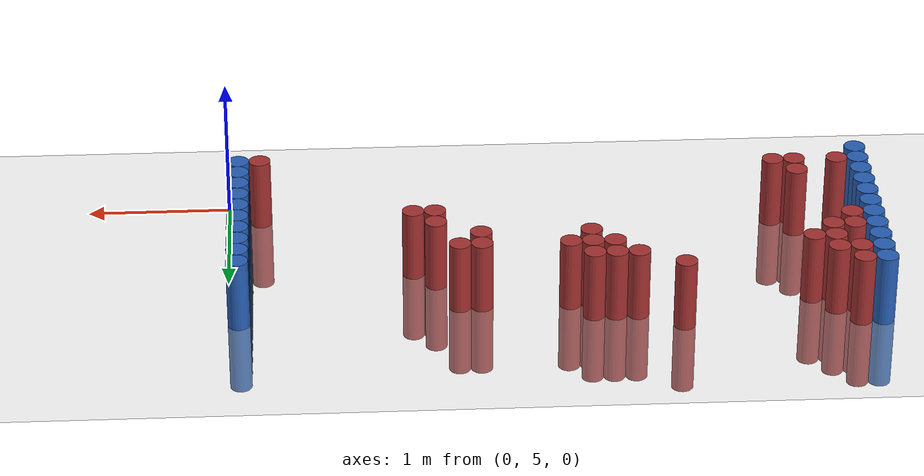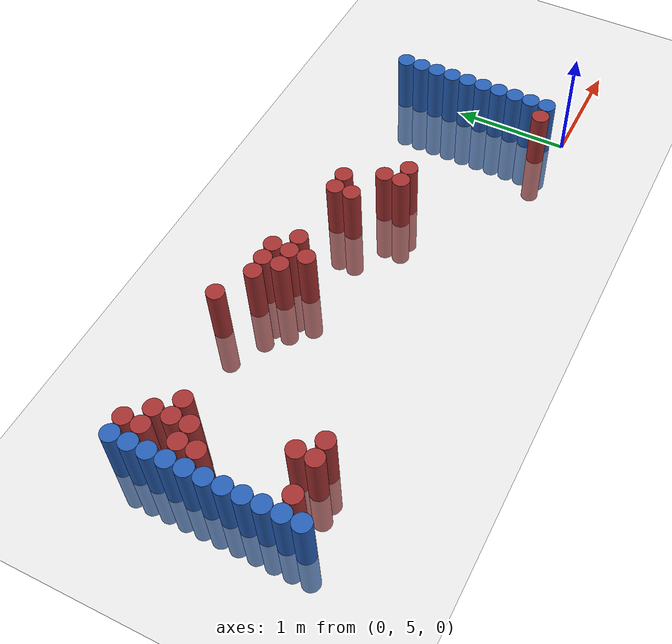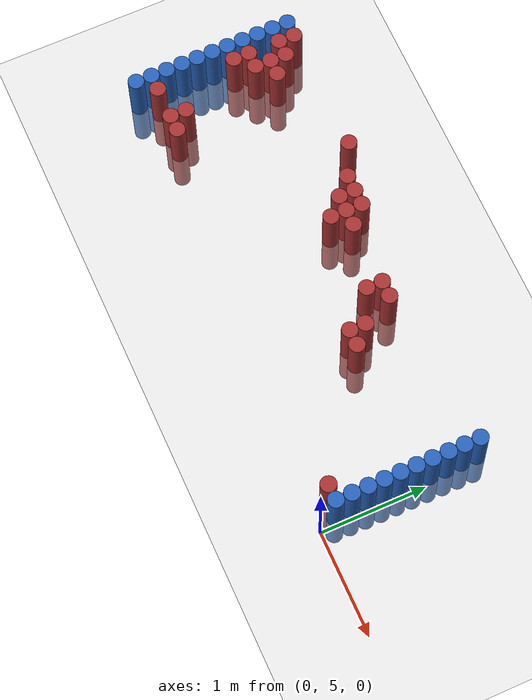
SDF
<sdf version="1.6">
 <world name="default">
  <model name="ground_plane">
   <static>1</static>
   <link name="link">
    <collision name="collision">
     <geometry><plane><normal>0 0 1</normal><size>100 100</size></plane></geometry>
     <surface><friction><ode><mu>100</mu><mu2>50</mu2></ode></friction></surface>
    </collision>
    <visual name="visual">
     <cast_shadows>0</cast_shadows>
     <geometry><plane><normal>0 0 1</normal><size>100 100</size></plane></geometry>
     <material>
      <script><uri>file://media/materials/scripts/gazebo.material</uri><name>Gazebo/Grey</name></script>
     </material>
    </visual>
   </link>
  </model>
  <model name="unit_cylinder_96">
   <static>1</static>
   <pose>-4.425000 5.175000 0.000000 0.000000 0.000000 0.000000</pose>
   <link name="link">
    <inertial>
     <mass>1</mass>
     <inertia><ixx>0.145833</ixx><ixy>0</ixy><ixz>0</ixz><iyy>0.145833</iyy><iyz>0</iyz><izz>0.125</izz></inertia>
    </inertial>
    <collision name="collision">
     <geometry><cylinder><radius>0.075000</radius><length>1</length></cylinder></geometry>
    </collision>
    <visual name="visual">
     <geometry><cylinder><radius>0.075000</radius><length>1</length></cylinder></geometry>
     <material>
      <ambient>0.152000 0.379000 0.720000 1</ambient>
      <diffuse>0.152000 0.379000 0.720000 1</diffuse>
     </material>
     <material>
      <script><name>Gazebo/Grey</name><uri>file://media/materials/scripts/gazebo.material</uri></script>
     </material>
    </visual>
   </link>
  </model>
  <model name="unit_cylinder_97">
   <static>1</static>
   <pose>-4.425000 5.325000 0.000000 0.000000 0.000000 0.000000</pose>
   <link name="link">
    <inertial>
     <mass>1</mass>
     <inertia><ixx>0.145833</ixx><ixy>0</ixy><ixz>0</ixz><iyy>0.145833</iyy><iyz>0</iyz><izz>0.125</izz></inertia>
    </inertial>
    <collision name="collision">
     <geometry><cylinder><radius>0.075000</radius><length>1</length></cylinder></geometry>
    </collision>
    <visual name="visual">
     <geometry><cylinder><radius>0.075000</radius><length>1</length></cylinder></geometry>
     <material>
      <ambient>0.152000 0.379000 0.720000 1</ambient>
      <diffuse>0.152000 0.379000 0.720000 1</diffuse>
     </material>
     <material>
      <script><name>Gazebo/Grey</name><uri>file://media/materials/scripts/gazebo.material</uri></script>
     </material>
    </visual>
   </link>
  </model>
  <model name="unit_cylinder_98">
   <static>1</static>
   <pose>-4.425000 5.475000 0.000000 0.000000 0.000000 0.000000</pose>
   <link name="link">
    <inertial>
     <mass>1</mass>
     <inertia><ixx>0.145833</ixx><ixy>0</ixy><ixz>0</ixz><iyy>0.145833</iyy><iyz>0</iyz><izz>0.125</izz></inertia>
    </inertial>
    <collision name="collision">
     <geometry><cylinder><radius>0.075000</radius><length>1</length></cylinder></geometry>
    </collision>
    <visual name="visual">
     <geometry><cylinder><radius>0.075000</radius><length>1</length></cylinder></geometry>
     <material>
      <ambient>0.152000 0.379000 0.720000 1</ambient>
      <diffuse>0.152000 0.379000 0.720000 1</diffuse>
     </material>
     <material>
      <script><name>Gazebo/Grey</name><uri>file://media/materials/scripts/gazebo.material</uri></script>
     </material>
    </visual>
   </link>
  </model>
  <model name="unit_cylinder_99">
   <static>1</static>
   <pose>-4.425000 5.625000 0.000000 0.000000 0.000000 0.000000</pose>
   <link name="link">
    <inertial>
     <mass>1</mass>
     <inertia><ixx>0.145833</ixx><ixy>0</ixy><ixz>0</ixz><iyy>0.145833</iyy><iyz>0</iyz><izz>0.125</izz></inertia>
    </inertial>
    <collision name="collision">
     <geometry><cylinder><radius>0.075000</radius><length>1</length></cylinder></geometry>
    </collision>
    <visual name="visual">
     <geometry><cylinder><radius>0.075000</radius><length>1</length></cylinder></geometry>
     <material>
      <ambient>0.152000 0.379000 0.720000 1</ambient>
      <diffuse>0.152000 0.379000 0.720000 1</diffuse>
     </material>
     <material>
      <script><name>Gazebo/Grey</name><uri>file://media/materials/scripts/gazebo.material</uri></script>
     </material>
    </visual>
   </link>
  </model>
  <model name="unit_cylinder_100">
   <static>1</static>
   <pose>-4.425000 5.775000 0.000000 0.000000 0.000000 0.000000</pose>
   <link name="link">
    <inertial>
     <mass>1</mass>
     <inertia><ixx>0.145833</ixx><ixy>0</ixy><ixz>0</ixz><iyy>0.145833</iyy><iyz>0</iyz><izz>0.125</izz></inertia>
    </inertial>
    <collision name="collision">
     <geometry><cylinder><radius>0.075000</radius><length>1</length></cylinder></geometry>
    </collision>
    <visual name="visual">
     <geometry><cylinder><radius>0.075000</radius><length>1</length></cylinder></geometry>
     <material>
      <ambient>0.152000 0.379000 0.720000 1</ambient>
      <diffuse>0.152000 0.379000 0.720000 1</diffuse>
     </material>
     <material>
      <script><name>Gazebo/Grey</name><uri>file://media/materials/scripts/gazebo.material</uri></script>
     </material>
    </visual>
   </link>
  </model>
  <model name="unit_cylinder_101">
   <static>1</static>
   <pose>-4.425000 5.925000 0.000000 0.000000 0.000000 0.000000</pose>
   <link name="link">
    <inertial>
     <mass>1</mass>
     <inertia><ixx>0.145833</ixx><ixy>0</ixy><ixz>0</ixz><iyy>0.145833</iyy><iyz>0</iyz><izz>0.125</izz></inertia>
    </inertial>
    <collision name="collision">
     <geometry><cylinder><radius>0.075000</radius><length>1</length></cylinder></geometry>
    </collision>
    <visual name="visual">
     <geometry><cylinder><radius>0.075000</radius><length>1</length></cylinder></geometry>
     <material>
      <ambient>0.152000 0.379000 0.720000 1</ambient>
      <diffuse>0.152000 0.379000 0.720000 1</diffuse>
     </material>
     <material>
      <script><name>Gazebo/Grey</name><uri>file://media/materials/scripts/gazebo.material</uri></script>
     </material>
    </visual>
   </link>
  </model>
  <model name="unit_cylinder_102">
   <static>1</static>
   <pose>-4.425000 6.075000 0.000000 0.000000 0.000000 0.000000</pose>
   <link name="link">
    <inertial>
     <mass>1</mass>
     <inertia><ixx>0.145833</ixx><ixy>0</ixy><ixz>0</ixz><iyy>0.145833</iyy><iyz>0</iyz><izz>0.125</izz></inertia>
    </inertial>
    <collision name="collision">
     <geometry><cylinder><radius>0.075000</radius><length>1</length></cylinder></geometry>
    </collision>
    <visual name="visual">
     <geometry><cylinder><radius>0.075000</radius><length>1</length></cylinder></geometry>
     <material>
      <ambient>0.152000 0.379000 0.720000 1</ambient>
      <diffuse>0.152000 0.379000 0.720000 1</diffuse>
     </material>
     <material>
      <script><name>Gazebo/Grey</name><uri>file://media/materials/scripts/gazebo.material</uri></script>
     </material>
    </visual>
   </link>
  </model>
  <model name="unit_cylinder_103">
   <static>1</static>
   <pose>-4.425000 6.225000 0.000000 0.000000 0.000000 0.000000</pose>
   <link name="link">
    <inertial>
     <mass>1</mass>
     <inertia><ixx>0.145833</ixx><ixy>0</ixy><ixz>0</ixz><iyy>0.145833</iyy><iyz>0</iyz><izz>0.125</izz></inertia>
    </inertial>
    <collision name="collision">
     <geometry><cylinder><radius>0.075000</radius><length>1</length></cylinder></geometry>
    </collision>
    <visual name="visual">
     <geometry><cylinder><radius>0.075000</radius><length>1</length></cylinder></geometry>
     <material>
      <ambient>0.152000 0.379000 0.720000 1</ambient>
      <diffuse>0.152000 0.379000 0.720000 1</diffuse>
     </material>
     <material>
      <script><name>Gazebo/Grey</name><uri>file://media/materials/scripts/gazebo.material</uri></script>
     </material>
    </visual>
   </link>
  </model>
  <model name="unit_cylinder_104">
   <static>1</static>
   <pose>-4.425000 6.375000 0.000000 0.000000 0.000000 0.000000</pose>
   <link name="link">
    <inertial>
     <mass>1</mass>
     <inertia><ixx>0.145833</ixx><ixy>0</ixy><ixz>0</ixz><iyy>0.145833</iyy><iyz>0</iyz><izz>0.125</izz></inertia>
    </inertial>
    <collision name="collision">
     <geometry><cylinder><radius>0.075000</radius><length>1</length></cylinder></geometry>
    </collision>
    <visual name="visual">
     <geometry><cylinder><radius>0.075000</radius><length>1</length></cylinder></geometry>
     <material>
      <ambient>0.152000 0.379000 0.720000 1</ambient>
      <diffuse>0.152000 0.379000 0.720000 1</diffuse>
     </material>
     <material>
      <script><name>Gazebo/Grey</name><uri>file://media/materials/scripts/gazebo.material</uri></script>
     </material>
    </visual>
   </link>
  </model>
  <model name="unit_cylinder_105">
   <static>1</static>
   <pose>-4.425000 6.525000 0.000000 0.000000 0.000000 0.000000</pose>
   <link name="link">
    <inertial>
     <mass>1</mass>
     <inertia><ixx>0.145833</ixx><ixy>0</ixy><ixz>0</ixz><iyy>0.145833</iyy><iyz>0</iyz><izz>0.125</izz></inertia>
    </inertial>
    <collision name="collision">
     <geometry><cylinder><radius>0.075000</radius><length>1</length></cylinder></geometry>
    </collision>
    <visual name="visual">
     <geometry><cylinder><radius>0.075000</radius><length>1</length></cylinder></geometry>
     <material>
      <ambient>0.152000 0.379000 0.720000 1</ambient>
      <diffuse>0.152000 0.379000 0.720000 1</diffuse>
     </material>
     <material>
      <script><name>Gazebo/Grey</name><uri>file://media/materials/scripts/gazebo.material</uri></script>
     </material>
    </visual>
   </link>
  </model>
  <model name="unit_cylinder_106">
   <static>1</static>
   <pose>-4.425000 6.675000 0.000000 0.000000 0.000000 0.000000</pose>
   <link name="link">
    <inertial>
     <mass>1</mass>
     <inertia><ixx>0.145833</ixx><ixy>0</ixy><ixz>0</ixz><iyy>0.145833</iyy><iyz>0</iyz><izz>0.125</izz></inertia>
    </inertial>
    <collision name="collision">
     <geometry><cylinder><radius>0.075000</radius><length>1</length></cylinder></geometry>
    </collision>
    <visual name="visual">
     <geometry><cylinder><radius>0.075000</radius><length>1</length></cylinder></geometry>
     <material>
      <ambient>0.152000 0.379000 0.720000 1</ambient>
      <diffuse>0.152000 0.379000 0.720000 1</diffuse>
     </material>
     <material>
      <script><name>Gazebo/Grey</name><uri>file://media/materials/scripts/gazebo.material</uri></script>
     </material>
    </visual>
   </link>
  </model>
  <model name="unit_cylinder_126">
   <static>1</static>
   <pose>-4.275000 5.325000 0.000000 0.000000 0.000000 0.000000</pose>
   <link name="link">
    <inertial>
     <mass>1</mass>
     <inertia><ixx>0.145833</ixx><ixy>0</ixy><ixz>0</ixz><iyy>0.145833</iyy><iyz>0</iyz><izz>0.125</izz></inertia>
    </inertial>
    <collision name="collision">
     <geometry><cylinder><radius>0.075000</radius><length>1</length></cylinder></geometry>
    </collision>
    <visual name="visual">
     <geometry><cylinder><radius>0.075000</radius><length>1</length></cylinder></geometry>
     <material>
      <ambient>0.648000 0.192000 0.192000 1</ambient>
      <diffuse>0.648000 0.192000 0.192000 1</diffuse>
     </material>
     <material>
      <script><name>Gazebo/Grey</name><uri>file://media/materials/scripts/gazebo.material</uri></script>
     </material>
    </visual>
   </link>
  </model>
  <model name="unit_cylinder_127">
   <static>1</static>
   <pose>-4.275000 6.075000 0.000000 0.000000 0.000000 0.000000</pose>
   <link name="link">
    <inertial>
     <mass>1</mass>
     <inertia><ixx>0.145833</ixx><ixy>0</ixy><ixz>0</ixz><iyy>0.145833</iyy><iyz>0</iyz><izz>0.125</izz></inertia>
    </inertial>
    <collision name="collision">
     <geometry><cylinder><radius>0.075000</radius><length>1</length></cylinder></geometry>
    </collision>
    <visual name="visual">
     <geometry><cylinder><radius>0.075000</radius><length>1</length></cylinder></geometry>
     <material>
      <ambient>0.648000 0.192000 0.192000 1</ambient>
      <diffuse>0.648000 0.192000 0.192000 1</diffuse>
     </material>
     <material>
      <script><name>Gazebo/Grey</name><uri>file://media/materials/scripts/gazebo.material</uri></script>
     </material>
    </visual>
   </link>
  </model>
  <model name="unit_cylinder_128">
   <static>1</static>
   <pose>-4.275000 6.225000 0.000000 0.000000 0.000000 0.000000</pose>
   <link name="link">
    <inertial>
     <mass>1</mass>
     <inertia><ixx>0.145833</ixx><ixy>0</ixy><ixz>0</ixz><iyy>0.145833</iyy><iyz>0</iyz><izz>0.125</izz></inertia>
    </inertial>
    <collision name="collision">
     <geometry><cylinder><radius>0.075000</radius><length>1</length></cylinder></geometry>
    </collision>
    <visual name="visual">
     <geometry><cylinder><radius>0.075000</radius><length>1</length></cylinder></geometry>
     <material>
      <ambient>0.648000 0.192000 0.192000 1</ambient>
      <diffuse>0.648000 0.192000 0.192000 1</diffuse>
     </material>
     <material>
      <script><name>Gazebo/Grey</name><uri>file://media/materials/scripts/gazebo.material</uri></script>
     </material>
    </visual>
   </link>
  </model>
  <model name="unit_cylinder_129">
   <static>1</static>
   <pose>-4.275000 6.525000 0.000000 0.000000 0.000000 0.000000</pose>
   <link name="link">
    <inertial>
     <mass>1</mass>
     <inertia><ixx>0.145833</ixx><ixy>0</ixy><ixz>0</ixz><iyy>0.145833</iyy><iyz>0</iyz><izz>0.125</izz></inertia>
    </inertial>
    <collision name="collision">
     <geometry><cylinder><radius>0.075000</radius><length>1</length></cylinder></geometry>
    </collision>
    <visual name="visual">
     <geometry><cylinder><radius>0.075000</radius><length>1</length></cylinder></geometry>
     <material>
      <ambient>0.648000 0.192000 0.192000 1</ambient>
      <diffuse>0.648000 0.192000 0.192000 1</diffuse>
     </material>
     <material>
      <script><name>Gazebo/Grey</name><uri>file://media/materials/scripts/gazebo.material</uri></script>
     </material>
    </visual>
   </link>
  </model>
  <model name="unit_cylinder_130">
   <static>1</static>
   <pose>-4.275000 6.675000 0.000000 0.000000 0.000000 0.000000</pose>
   <link name="link">
    <inertial>
     <mass>1</mass>
     <inertia><ixx>0.145833</ixx><ixy>0</ixy><ixz>0</ixz><iyy>0.145833</iyy><iyz>0</iyz><izz>0.125</izz></inertia>
    </inertial>
    <collision name="collision">
     <geometry><cylinder><radius>0.075000</radius><length>1</length></cylinder></geometry>
    </collision>
    <visual name="visual">
     <geometry><cylinder><radius>0.075000</radius><length>1</length></cylinder></geometry>
     <material>
      <ambient>0.648000 0.192000 0.192000 1</ambient>
      <diffuse>0.648000 0.192000 0.192000 1</diffuse>
     </material>
     <material>
      <script><name>Gazebo/Grey</name><uri>file://media/materials/scripts/gazebo.material</uri></script>
     </material>
    </visual>
   </link>
  </model>
  <model name="unit_cylinder_133">
   <static>1</static>
   <pose>-4.125000 6.225000 0.000000 0.000000 0.000000 0.000000</pose>
   <link name="link">
    <inertial>
     <mass>1</mass>
     <inertia><ixx>0.145833</ixx><ixy>0</ixy><ixz>0</ixz><iyy>0.145833</iyy><iyz>0</iyz><izz>0.125</izz></inertia>
    </inertial>
    <collision name="collision">
     <geometry><cylinder><radius>0.075000</radius><length>1</length></cylinder></geometry>
    </collision>
    <visual name="visual">
     <geometry><cylinder><radius>0.075000</radius><length>1</length></cylinder></geometry>
     <material>
      <ambient>0.648000 0.192000 0.192000 1</ambient>
      <diffuse>0.648000 0.192000 0.192000 1</diffuse>
     </material>
     <material>
      <script><name>Gazebo/Grey</name><uri>file://media/materials/scripts/gazebo.material</uri></script>
     </material>
    </visual>
   </link>
  </model>
  <model name="unit_cylinder_134">
   <static>1</static>
   <pose>-4.125000 6.375000 0.000000 0.000000 0.000000 0.000000</pose>
   <link name="link">
    <inertial>
     <mass>1</mass>
     <inertia><ixx>0.145833</ixx><ixy>0</ixy><ixz>0</ixz><iyy>0.145833</iyy><iyz>0</iyz><izz>0.125</izz></inertia>
    </inertial>
    <collision name="collision">
     <geometry><cylinder><radius>0.075000</radius><length>1</length></cylinder></geometry>
    </collision>
    <visual name="visual">
     <geometry><cylinder><radius>0.075000</radius><length>1</length></cylinder></geometry>
     <material>
      <ambient>0.648000 0.192000 0.192000 1</ambient>
      <diffuse>0.648000 0.192000 0.192000 1</diffuse>
     </material>
     <material>
      <script><name>Gazebo/Grey</name><uri>file://media/materials/scripts/gazebo.material</uri></script>
     </material>
    </visual>
   </link>
  </model>
  <model name="unit_cylinder_135">
   <static>1</static>
   <pose>-4.125000 6.525000 0.000000 0.000000 0.000000 0.000000</pose>
   <link name="link">
    <inertial>
     <mass>1</mass>
     <inertia><ixx>0.145833</ixx><ixy>0</ixy><ixz>0</ixz><iyy>0.145833</iyy><iyz>0</iyz><izz>0.125</izz></inertia>
    </inertial>
    <collision name="collision">
     <geometry><cylinder><radius>0.075000</radius><length>1</length></cylinder></geometry>
    </collision>
    <visual name="visual">
     <geometry><cylinder><radius>0.075000</radius><length>1</length></cylinder></geometry>
     <material>
      <ambient>0.648000 0.192000 0.192000 1</ambient>
      <diffuse>0.648000 0.192000 0.192000 1</diffuse>
     </material>
     <material>
      <script><name>Gazebo/Grey</name><uri>file://media/materials/scripts/gazebo.material</uri></script>
     </material>
    </visual>
   </link>
  </model>
  <model name="unit_cylinder_136">
   <static>1</static>
   <pose>-3.975000 5.325000 0.000000 0.000000 0.000000 0.000000</pose>
   <link name="link">
    <inertial>
     <mass>1</mass>
     <inertia><ixx>0.145833</ixx><ixy>0</ixy><ixz>0</ixz><iyy>0.145833</iyy><iyz>0</iyz><izz>0.125</izz></inertia>
    </inertial>
    <collision name="collision">
     <geometry><cylinder><radius>0.075000</radius><length>1</length></cylinder></geometry>
    </collision>
    <visual name="visual">
     <geometry><cylinder><radius>0.075000</radius><length>1</length></cylinder></geometry>
     <material>
      <ambient>0.648000 0.192000 0.192000 1</ambient>
      <diffuse>0.648000 0.192000 0.192000 1</diffuse>
     </material>
     <material>
      <script><name>Gazebo/Grey</name><uri>file://media/materials/scripts/gazebo.material</uri></script>
     </material>
    </visual>
   </link>
  </model>
  <model name="unit_cylinder_137">
   <static>1</static>
   <pose>-3.975000 5.475000 0.000000 0.000000 0.000000 0.000000</pose>
   <link name="link">
    <inertial>
     <mass>1</mass>
     <inertia><ixx>0.145833</ixx><ixy>0</ixy><ixz>0</ixz><iyy>0.145833</iyy><iyz>0</iyz><izz>0.125</izz></inertia>
    </inertial>
    <collision name="collision">
     <geometry><cylinder><radius>0.075000</radius><length>1</length></cylinder></geometry>
    </collision>
    <visual name="visual">
     <geometry><cylinder><radius>0.075000</radius><length>1</length></cylinder></geometry>
     <material>
      <ambient>0.648000 0.192000 0.192000 1</ambient>
      <diffuse>0.648000 0.192000 0.192000 1</diffuse>
     </material>
     <material>
      <script><name>Gazebo/Grey</name><uri>file://media/materials/scripts/gazebo.material</uri></script>
     </material>
    </visual>
   </link>
  </model>
  <model name="unit_cylinder_138">
   <static>1</static>
   <pose>-3.975000 6.375000 0.000000 0.000000 0.000000 0.000000</pose>
   <link name="link">
    <inertial>
     <mass>1</mass>
     <inertia><ixx>0.145833</ixx><ixy>0</ixy><ixz>0</ixz><iyy>0.145833</iyy><iyz>0</iyz><izz>0.125</izz></inertia>
    </inertial>
    <collision name="collision">
     <geometry><cylinder><radius>0.075000</radius><length>1</length></cylinder></geometry>
    </collision>
    <visual name="visual">
     <geometry><cylinder><radius>0.075000</radius><length>1</length></cylinder></geometry>
     <material>
      <ambient>0.648000 0.192000 0.192000 1</ambient>
      <diffuse>0.648000 0.192000 0.192000 1</diffuse>
     </material>
     <material>
      <script><name>Gazebo/Grey</name><uri>file://media/materials/scripts/gazebo.material</uri></script>
     </material>
    </visual>
   </link>
  </model>
  <model name="unit_cylinder_141">
   <static>1</static>
   <pose>-3.825000 5.325000 0.000000 0.000000 0.000000 0.000000</pose>
   <link name="link">
    <inertial>
     <mass>1</mass>
     <inertia><ixx>0.145833</ixx><ixy>0</ixy><ixz>0</ixz><iyy>0.145833</iyy><iyz>0</iyz><izz>0.125</izz></inertia>
    </inertial>
    <collision name="collision">
     <geometry><cylinder><radius>0.075000</radius><length>1</length></cylinder></geometry>
    </collision>
    <visual name="visual">
     <geometry><cylinder><radius>0.075000</radius><length>1</length></cylinder></geometry>
     <material>
      <ambient>0.648000 0.192000 0.192000 1</ambient>
      <diffuse>0.648000 0.192000 0.192000 1</diffuse>
     </material>
     <material>
      <script><name>Gazebo/Grey</name><uri>file://media/materials/scripts/gazebo.material</uri></script>
     </material>
    </visual>
   </link>
  </model>
  <model name="unit_cylinder_159">
   <static>1</static>
   <pose>-3.075000 6.675000 0.000000 0.000000 0.000000 0.000000</pose>
   <link name="link">
    <inertial>
     <mass>1</mass>
     <inertia><ixx>0.145833</ixx><ixy>0</ixy><ixz>0</ixz><iyy>0.145833</iyy><iyz>0</iyz><izz>0.125</izz></inertia>
    </inertial>
    <collision name="collision">
     <geometry><cylinder><radius>0.075000</radius><length>1</length></cylinder></geometry>
    </collision>
    <visual name="visual">
     <geometry><cylinder><radius>0.075000</radius><length>1</length></cylinder></geometry>
     <material>
      <ambient>0.648000 0.192000 0.192000 1</ambient>
      <diffuse>0.648000 0.192000 0.192000 1</diffuse>
     </material>
     <material>
      <script><name>Gazebo/Grey</name><uri>file://media/materials/scripts/gazebo.material</uri></script>
     </material>
    </visual>
   </link>
  </model>
  <model name="unit_cylinder_166">
   <static>1</static>
   <pose>-2.775000 6.525000 0.000000 0.000000 0.000000 0.000000</pose>
   <link name="link">
    <inertial>
     <mass>1</mass>
     <inertia><ixx>0.145833</ixx><ixy>0</ixy><ixz>0</ixz><iyy>0.145833</iyy><iyz>0</iyz><izz>0.125</izz></inertia>
    </inertial>
    <collision name="collision">
     <geometry><cylinder><radius>0.075000</radius><length>1</length></cylinder></geometry>
    </collision>
    <visual name="visual">
     <geometry><cylinder><radius>0.075000</radius><length>1</length></cylinder></geometry>
     <material>
      <ambient>0.648000 0.192000 0.192000 1</ambient>
      <diffuse>0.648000 0.192000 0.192000 1</diffuse>
     </material>
     <material>
      <script><name>Gazebo/Grey</name><uri>file://media/materials/scripts/gazebo.material</uri></script>
     </material>
    </visual>
   </link>
  </model>
  <model name="unit_cylinder_171">
   <static>1</static>
   <pose>-2.625000 6.375000 0.000000 0.000000 0.000000 0.000000</pose>
   <link name="link">
    <inertial>
     <mass>1</mass>
     <inertia><ixx>0.145833</ixx><ixy>0</ixy><ixz>0</ixz><iyy>0.145833</iyy><iyz>0</iyz><izz>0.125</izz></inertia>
    </inertial>
    <collision name="collision">
     <geometry><cylinder><radius>0.075000</radius><length>1</length></cylinder></geometry>
    </collision>
    <visual name="visual">
     <geometry><cylinder><radius>0.075000</radius><length>1</length></cylinder></geometry>
     <material>
      <ambient>0.648000 0.192000 0.192000 1</ambient>
      <diffuse>0.648000 0.192000 0.192000 1</diffuse>
     </material>
     <material>
      <script><name>Gazebo/Grey</name><uri>file://media/materials/scripts/gazebo.material</uri></script>
     </material>
    </visual>
   </link>
  </model>
  <model name="unit_cylinder_172">
   <static>1</static>
   <pose>-2.625000 6.525000 0.000000 0.000000 0.000000 0.000000</pose>
   <link name="link">
    <inertial>
     <mass>1</mass>
     <inertia><ixx>0.145833</ixx><ixy>0</ixy><ixz>0</ixz><iyy>0.145833</iyy><iyz>0</iyz><izz>0.125</izz></inertia>
    </inertial>
    <collision name="collision">
     <geometry><cylinder><radius>0.075000</radius><length>1</length></cylinder></geometry>
    </collision>
    <visual name="visual">
     <geometry><cylinder><radius>0.075000</radius><length>1</length></cylinder></geometry>
     <material>
      <ambient>0.648000 0.192000 0.192000 1</ambient>
      <diffuse>0.648000 0.192000 0.192000 1</diffuse>
     </material>
     <material>
      <script><name>Gazebo/Grey</name><uri>file://media/materials/scripts/gazebo.material</uri></script>
     </material>
    </visual>
   </link>
  </model>
  <model name="unit_cylinder_177">
   <static>1</static>
   <pose>-2.475000 6.225000 0.000000 0.000000 0.000000 0.000000</pose>
   <link name="link">
    <inertial>
     <mass>1</mass>
     <inertia><ixx>0.145833</ixx><ixy>0</ixy><ixz>0</ixz><iyy>0.145833</iyy><iyz>0</iyz><izz>0.125</izz></inertia>
    </inertial>
    <collision name="collision">
     <geometry><cylinder><radius>0.075000</radius><length>1</length></cylinder></geometry>
    </collision>
    <visual name="visual">
     <geometry><cylinder><radius>0.075000</radius><length>1</length></cylinder></geometry>
     <material>
      <ambient>0.648000 0.192000 0.192000 1</ambient>
      <diffuse>0.648000 0.192000 0.192000 1</diffuse>
     </material>
     <material>
      <script><name>Gazebo/Grey</name><uri>file://media/materials/scripts/gazebo.material</uri></script>
     </material>
    </visual>
   </link>
  </model>
  <model name="unit_cylinder_178">
   <static>1</static>
   <pose>-2.475000 6.375000 0.000000 0.000000 0.000000 0.000000</pose>
   <link name="link">
    <inertial>
     <mass>1</mass>
     <inertia><ixx>0.145833</ixx><ixy>0</ixy><ixz>0</ixz><iyy>0.145833</iyy><iyz>0</iyz><izz>0.125</izz></inertia>
    </inertial>
    <collision name="collision">
     <geometry><cylinder><radius>0.075000</radius><length>1</length></cylinder></geometry>
    </collision>
    <visual name="visual">
     <geometry><cylinder><radius>0.075000</radius><length>1</length></cylinder></geometry>
     <material>
      <ambient>0.648000 0.192000 0.192000 1</ambient>
      <diffuse>0.648000 0.192000 0.192000 1</diffuse>
     </material>
     <material>
      <script><name>Gazebo/Grey</name><uri>file://media/materials/scripts/gazebo.material</uri></script>
     </material>
    </visual>
   </link>
  </model>
  <model name="unit_cylinder_179">
   <static>1</static>
   <pose>-2.475000 6.525000 0.000000 0.000000 0.000000 0.000000</pose>
   <link name="link">
    <inertial>
     <mass>1</mass>
     <inertia><ixx>0.145833</ixx><ixy>0</ixy><ixz>0</ixz><iyy>0.145833</iyy><iyz>0</iyz><izz>0.125</izz></inertia>
    </inertial>
    <collision name="collision">
     <geometry><cylinder><radius>0.075000</radius><length>1</length></cylinder></geometry>
    </collision>
    <visual name="visual">
     <geometry><cylinder><radius>0.075000</radius><length>1</length></cylinder></geometry>
     <material>
      <ambient>0.648000 0.192000 0.192000 1</ambient>
      <diffuse>0.648000 0.192000 0.192000 1</diffuse>
     </material>
     <material>
      <script><name>Gazebo/Grey</name><uri>file://media/materials/scripts/gazebo.material</uri></script>
     </material>
    </visual>
   </link>
  </model>
  <model name="unit_cylinder_183">
   <static>1</static>
   <pose>-2.325000 6.375000 0.000000 0.000000 0.000000 0.000000</pose>
   <link name="link">
    <inertial>
     <mass>1</mass>
     <inertia><ixx>0.145833</ixx><ixy>0</ixy><ixz>0</ixz><iyy>0.145833</iyy><iyz>0</iyz><izz>0.125</izz></inertia>
    </inertial>
    <collision name="collision">
     <geometry><cylinder><radius>0.075000</radius><length>1</length></cylinder></geometry>
    </collision>
    <visual name="visual">
     <geometry><cylinder><radius>0.075000</radius><length>1</length></cylinder></geometry>
     <material>
      <ambient>0.648000 0.192000 0.192000 1</ambient>
      <diffuse>0.648000 0.192000 0.192000 1</diffuse>
     </material>
     <material>
      <script><name>Gazebo/Grey</name><uri>file://media/materials/scripts/gazebo.material</uri></script>
     </material>
    </visual>
   </link>
  </model>
  <model name="unit_cylinder_184">
   <static>1</static>
   <pose>-1.725000 6.225000 0.000000 0.000000 0.000000 0.000000</pose>
   <link name="link">
    <inertial>
     <mass>1</mass>
     <inertia><ixx>0.145833</ixx><ixy>0</ixy><ixz>0</ixz><iyy>0.145833</iyy><iyz>0</iyz><izz>0.125</izz></inertia>
    </inertial>
    <collision name="collision">
     <geometry><cylinder><radius>0.075000</radius><length>1</length></cylinder></geometry>
    </collision>
    <visual name="visual">
     <geometry><cylinder><radius>0.075000</radius><length>1</length></cylinder></geometry>
     <material>
      <ambient>0.648000 0.192000 0.192000 1</ambient>
      <diffuse>0.648000 0.192000 0.192000 1</diffuse>
     </material>
     <material>
      <script><name>Gazebo/Grey</name><uri>file://media/materials/scripts/gazebo.material</uri></script>
     </material>
    </visual>
   </link>
  </model>
  <model name="unit_cylinder_185">
   <static>1</static>
   <pose>-1.725000 6.375000 0.000000 0.000000 0.000000 0.000000</pose>
   <link name="link">
    <inertial>
     <mass>1</mass>
     <inertia><ixx>0.145833</ixx><ixy>0</ixy><ixz>0</ixz><iyy>0.145833</iyy><iyz>0</iyz><izz>0.125</izz></inertia>
    </inertial>
    <collision name="collision">
     <geometry><cylinder><radius>0.075000</radius><length>1</length></cylinder></geometry>
    </collision>
    <visual name="visual">
     <geometry><cylinder><radius>0.075000</radius><length>1</length></cylinder></geometry>
     <material>
      <ambient>0.648000 0.192000 0.192000 1</ambient>
      <diffuse>0.648000 0.192000 0.192000 1</diffuse>
     </material>
     <material>
      <script><name>Gazebo/Grey</name><uri>file://media/materials/scripts/gazebo.material</uri></script>
     </material>
    </visual>
   </link>
  </model>
  <model name="unit_cylinder_186">
   <static>1</static>
   <pose>-1.575000 6.375000 0.000000 0.000000 0.000000 0.000000</pose>
   <link name="link">
    <inertial>
     <mass>1</mass>
     <inertia><ixx>0.145833</ixx><ixy>0</ixy><ixz>0</ixz><iyy>0.145833</iyy><iyz>0</iyz><izz>0.125</izz></inertia>
    </inertial>
    <collision name="collision">
     <geometry><cylinder><radius>0.075000</radius><length>1</length></cylinder></geometry>
    </collision>
    <visual name="visual">
     <geometry><cylinder><radius>0.075000</radius><length>1</length></cylinder></geometry>
     <material>
      <ambient>0.648000 0.192000 0.192000 1</ambient>
      <diffuse>0.648000 0.192000 0.192000 1</diffuse>
     </material>
     <material>
      <script><name>Gazebo/Grey</name><uri>file://media/materials/scripts/gazebo.material</uri></script>
     </material>
    </visual>
   </link>
  </model>
  <model name="unit_cylinder_187">
   <static>1</static>
   <pose>-1.425000 5.925000 0.000000 0.000000 0.000000 0.000000</pose>
   <link name="link">
    <inertial>
     <mass>1</mass>
     <inertia><ixx>0.145833</ixx><ixy>0</ixy><ixz>0</ixz><iyy>0.145833</iyy><iyz>0</iyz><izz>0.125</izz></inertia>
    </inertial>
    <collision name="collision">
     <geometry><cylinder><radius>0.075000</radius><length>1</length></cylinder></geometry>
    </collision>
    <visual name="visual">
     <geometry><cylinder><radius>0.075000</radius><length>1</length></cylinder></geometry>
     <material>
      <ambient>0.648000 0.192000 0.192000 1</ambient>
      <diffuse>0.648000 0.192000 0.192000 1</diffuse>
     </material>
     <material>
      <script><name>Gazebo/Grey</name><uri>file://media/materials/scripts/gazebo.material</uri></script>
     </material>
    </visual>
   </link>
  </model>
  <model name="unit_cylinder_188">
   <static>1</static>
   <pose>-1.425000 6.075000 0.000000 0.000000 0.000000 0.000000</pose>
   <link name="link">
    <inertial>
     <mass>1</mass>
     <inertia><ixx>0.145833</ixx><ixy>0</ixy><ixz>0</ixz><iyy>0.145833</iyy><iyz>0</iyz><izz>0.125</izz></inertia>
    </inertial>
    <collision name="collision">
     <geometry><cylinder><radius>0.075000</radius><length>1</length></cylinder></geometry>
    </collision>
    <visual name="visual">
     <geometry><cylinder><radius>0.075000</radius><length>1</length></cylinder></geometry>
     <material>
      <ambient>0.648000 0.192000 0.192000 1</ambient>
      <diffuse>0.648000 0.192000 0.192000 1</diffuse>
     </material>
     <material>
      <script><name>Gazebo/Grey</name><uri>file://media/materials/scripts/gazebo.material</uri></script>
     </material>
    </visual>
   </link>
  </model>
  <model name="unit_cylinder_189">
   <static>1</static>
   <pose>-1.275000 5.925000 0.000000 0.000000 0.000000 0.000000</pose>
   <link name="link">
    <inertial>
     <mass>1</mass>
     <inertia><ixx>0.145833</ixx><ixy>0</ixy><ixz>0</ixz><iyy>0.145833</iyy><iyz>0</iyz><izz>0.125</izz></inertia>
    </inertial>
    <collision name="collision">
     <geometry><cylinder><radius>0.075000</radius><length>1</length></cylinder></geometry>
    </collision>
    <visual name="visual">
     <geometry><cylinder><radius>0.075000</radius><length>1</length></cylinder></geometry>
     <material>
      <ambient>0.648000 0.192000 0.192000 1</ambient>
      <diffuse>0.648000 0.192000 0.192000 1</diffuse>
     </material>
     <material>
      <script><name>Gazebo/Grey</name><uri>file://media/materials/scripts/gazebo.material</uri></script>
     </material>
    </visual>
   </link>
  </model>
  <model name="unit_cylinder_200">
   <static>1</static>
   <pose>-0.225000 5.175000 0.000000 0.000000 0.000000 0.000000</pose>
   <link name="link">
    <inertial>
     <mass>1</mass>
     <inertia><ixx>0.145833</ixx><ixy>0</ixy><ixz>0</ixz><iyy>0.145833</iyy><iyz>0</iyz><izz>0.125</izz></inertia>
    </inertial>
    <collision name="collision">
     <geometry><cylinder><radius>0.075000</radius><length>1</length></cylinder></geometry>
    </collision>
    <visual name="visual">
     <geometry><cylinder><radius>0.075000</radius><length>1</length></cylinder></geometry>
     <material>
      <ambient>0.648000 0.192000 0.192000 1</ambient>
      <diffuse>0.648000 0.192000 0.192000 1</diffuse>
     </material>
     <material>
      <script><name>Gazebo/Grey</name><uri>file://media/materials/scripts/gazebo.material</uri></script>
     </material>
    </visual>
   </link>
  </model>
  <model name="unit_cylinder_211">
   <static>1</static>
   <pose>-0.075000 5.175000 0.000000 0.000000 0.000000 0.000000</pose>
   <link name="link">
    <inertial>
     <mass>1</mass>
     <inertia><ixx>0.145833</ixx><ixy>0</ixy><ixz>0</ixz><iyy>0.145833</iyy><iyz>0</iyz><izz>0.125</izz></inertia>
    </inertial>
    <collision name="collision">
     <geometry><cylinder><radius>0.075000</radius><length>1</length></cylinder></geometry>
    </collision>
    <visual name="visual">
     <geometry><cylinder><radius>0.075000</radius><length>1</length></cylinder></geometry>
     <material>
      <ambient>0.152000 0.379000 0.720000 1</ambient>
      <diffuse>0.152000 0.379000 0.720000 1</diffuse>
     </material>
     <material>
      <script><name>Gazebo/Grey</name><uri>file://media/materials/scripts/gazebo.material</uri></script>
     </material>
    </visual>
   </link>
  </model>
  <model name="unit_cylinder_212">
   <static>1</static>
   <pose>-0.075000 5.325000 0.000000 0.000000 0.000000 0.000000</pose>
   <link name="link">
    <inertial>
     <mass>1</mass>
     <inertia><ixx>0.145833</ixx><ixy>0</ixy><ixz>0</ixz><iyy>0.145833</iyy><iyz>0</iyz><izz>0.125</izz></inertia>
    </inertial>
    <collision name="collision">
     <geometry><cylinder><radius>0.075000</radius><length>1</length></cylinder></geometry>
    </collision>
    <visual name="visual">
     <geometry><cylinder><radius>0.075000</radius><length>1</length></cylinder></geometry>
     <material>
      <ambient>0.152000 0.379000 0.720000 1</ambient>
      <diffuse>0.152000 0.379000 0.720000 1</diffuse>
     </material>
     <material>
      <script><name>Gazebo/Grey</name><uri>file://media/materials/scripts/gazebo.material</uri></script>
     </material>
    </visual>
   </link>
  </model>
  <model name="unit_cylinder_213">
   <static>1</static>
   <pose>-0.075000 5.475000 0.000000 0.000000 0.000000 0.000000</pose>
   <link name="link">
    <inertial>
     <mass>1</mass>
     <inertia><ixx>0.145833</ixx><ixy>0</ixy><ixz>0</ixz><iyy>0.145833</iyy><iyz>0</iyz><izz>0.125</izz></inertia>
    </inertial>
    <collision name="collision">
     <geometry><cylinder><radius>0.075000</radius><length>1</length></cylinder></geometry>
    </collision>
    <visual name="visual">
     <geometry><cylinder><radius>0.075000</radius><length>1</length></cylinder></geometry>
     <material>
      <ambient>0.152000 0.379000 0.720000 1</ambient>
      <diffuse>0.152000 0.379000 0.720000 1</diffuse>
     </material>
     <material>
      <script><name>Gazebo/Grey</name><uri>file://media/materials/scripts/gazebo.material</uri></script>
     </material>
    </visual>
   </link>
  </model>
  <model name="unit_cylinder_214">
   <static>1</static>
   <pose>-0.075000 5.625000 0.000000 0.000000 0.000000 0.000000</pose>
   <link name="link">
    <inertial>
     <mass>1</mass>
     <inertia><ixx>0.145833</ixx><ixy>0</ixy><ixz>0</ixz><iyy>0.145833</iyy><iyz>0</iyz><izz>0.125</izz></inertia>
    </inertial>
    <collision name="collision">
     <geometry><cylinder><radius>0.075000</radius><length>1</length></cylinder></geometry>
    </collision>
    <visual name="visual">
     <geometry><cylinder><radius>0.075000</radius><length>1</length></cylinder></geometry>
     <material>
      <ambient>0.152000 0.379000 0.720000 1</ambient>
      <diffuse>0.152000 0.379000 0.720000 1</diffuse>
     </material>
     <material>
      <script><name>Gazebo/Grey</name><uri>file://media/materials/scripts/gazebo.material</uri></script>
     </material>
    </visual>
   </link>
  </model>
  <model name="unit_cylinder_215">
   <static>1</static>
   <pose>-0.075000 5.775000 0.000000 0.000000 0.000000 0.000000</pose>
   <link name="link">
    <inertial>
     <mass>1</mass>
     <inertia><ixx>0.145833</ixx><ixy>0</ixy><ixz>0</ixz><iyy>0.145833</iyy><iyz>0</iyz><izz>0.125</izz></inertia>
    </inertial>
    <collision name="collision">
     <geometry><cylinder><radius>0.075000</radius><length>1</length></cylinder></geometry>
    </collision>
    <visual name="visual">
     <geometry><cylinder><radius>0.075000</radius><length>1</length></cylinder></geometry>
     <material>
      <ambient>0.152000 0.379000 0.720000 1</ambient>
      <diffuse>0.152000 0.379000 0.720000 1</diffuse>
     </material>
     <material>
      <script><name>Gazebo/Grey</name><uri>file://media/materials/scripts/gazebo.material</uri></script>
     </material>
    </visual>
   </link>
  </model>
  <model name="unit_cylinder_216">
   <static>1</static>
   <pose>-0.075000 5.925000 0.000000 0.000000 0.000000 0.000000</pose>
   <link name="link">
    <inertial>
     <mass>1</mass>
     <inertia><ixx>0.145833</ixx><ixy>0</ixy><ixz>0</ixz><iyy>0.145833</iyy><iyz>0</iyz><izz>0.125</izz></inertia>
    </inertial>
    <collision name="collision">
     <geometry><cylinder><radius>0.075000</radius><length>1</length></cylinder></geometry>
    </collision>
    <visual name="visual">
     <geometry><cylinder><radius>0.075000</radius><length>1</length></cylinder></geometry>
     <material>
      <ambient>0.152000 0.379000 0.720000 1</ambient>
      <diffuse>0.152000 0.379000 0.720000 1</diffuse>
     </material>
     <material>
      <script><name>Gazebo/Grey</name><uri>file://media/materials/scripts/gazebo.material</uri></script>
     </material>
    </visual>
   </link>
  </model>
  <model name="unit_cylinder_217">
   <static>1</static>
   <pose>-0.075000 6.075000 0.000000 0.000000 0.000000 0.000000</pose>
   <link name="link">
    <inertial>
     <mass>1</mass>
     <inertia><ixx>0.145833</ixx><ixy>0</ixy><ixz>0</ixz><iyy>0.145833</iyy><iyz>0</iyz><izz>0.125</izz></inertia>
    </inertial>
    <collision name="collision">
     <geometry><cylinder><radius>0.075000</radius><length>1</length></cylinder></geometry>
    </collision>
    <visual name="visual">
     <geometry><cylinder><radius>0.075000</radius><length>1</length></cylinder></geometry>
     <material>
      <ambient>0.152000 0.379000 0.720000 1</ambient>
      <diffuse>0.152000 0.379000 0.720000 1</diffuse>
     </material>
     <material>
      <script><name>Gazebo/Grey</name><uri>file://media/materials/scripts/gazebo.material</uri></script>
     </material>
    </visual>
   </link>
  </model>
  <model name="unit_cylinder_218">
   <static>1</static>
   <pose>-0.075000 6.225000 0.000000 0.000000 0.000000 0.000000</pose>
   <link name="link">
    <inertial>
     <mass>1</mass>
     <inertia><ixx>0.145833</ixx><ixy>0</ixy><ixz>0</ixz><iyy>0.145833</iyy><iyz>0</iyz><izz>0.125</izz></inertia>
    </inertial>
    <collision name="collision">
     <geometry><cylinder><radius>0.075000</radius><length>1</length></cylinder></geometry>
    </collision>
    <visual name="visual">
     <geometry><cylinder><radius>0.075000</radius><length>1</length></cylinder></geometry>
     <material>
      <ambient>0.152000 0.379000 0.720000 1</ambient>
      <diffuse>0.152000 0.379000 0.720000 1</diffuse>
     </material>
     <material>
      <script><name>Gazebo/Grey</name><uri>file://media/materials/scripts/gazebo.material</uri></script>
     </material>
    </visual>
   </link>
  </model>
  <model name="unit_cylinder_219">
   <static>1</static>
   <pose>-0.075000 6.375000 0.000000 0.000000 0.000000 0.000000</pose>
   <link name="link">
    <inertial>
     <mass>1</mass>
     <inertia><ixx>0.145833</ixx><ixy>0</ixy><ixz>0</ixz><iyy>0.145833</iyy><iyz>0</iyz><izz>0.125</izz></inertia>
    </inertial>
    <collision name="collision">
     <geometry><cylinder><radius>0.075000</radius><length>1</length></cylinder></geometry>
    </collision>
    <visual name="visual">
     <geometry><cylinder><radius>0.075000</radius><length>1</length></cylinder></geometry>
     <material>
      <ambient>0.152000 0.379000 0.720000 1</ambient>
      <diffuse>0.152000 0.379000 0.720000 1</diffuse>
     </material>
     <material>
      <script><name>Gazebo/Grey</name><uri>file://media/materials/scripts/gazebo.material</uri></script>
     </material>
    </visual>
   </link>
  </model>
  <model name="unit_cylinder_220">
   <static>1</static>
   <pose>-0.075000 6.525000 0.000000 0.000000 0.000000 0.000000</pose>
   <link name="link">
    <inertial>
     <mass>1</mass>
     <inertia><ixx>0.145833</ixx><ixy>0</ixy><ixz>0</ixz><iyy>0.145833</iyy><iyz>0</iyz><izz>0.125</izz></inertia>
    </inertial>
    <collision name="collision">
     <geometry><cylinder><radius>0.075000</radius><length>1</length></cylinder></geometry>
    </collision>
    <visual name="visual">
     <geometry><cylinder><radius>0.075000</radius><length>1</length></cylinder></geometry>
     <material>
      <ambient>0.152000 0.379000 0.720000 1</ambient>
      <diffuse>0.152000 0.379000 0.720000 1</diffuse>
     </material>
     <material>
      <script><name>Gazebo/Grey</name><uri>file://media/materials/scripts/gazebo.material</uri></script>
     </material>
    </visual>
   </link>
  </model>
 </world>
</sdf>
